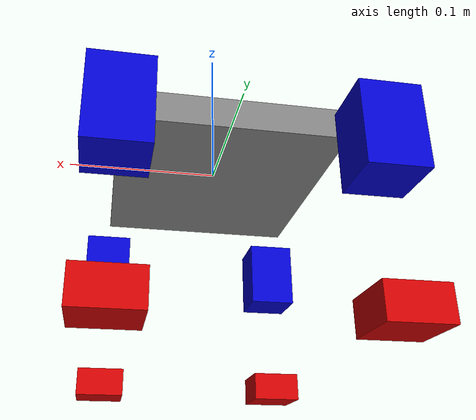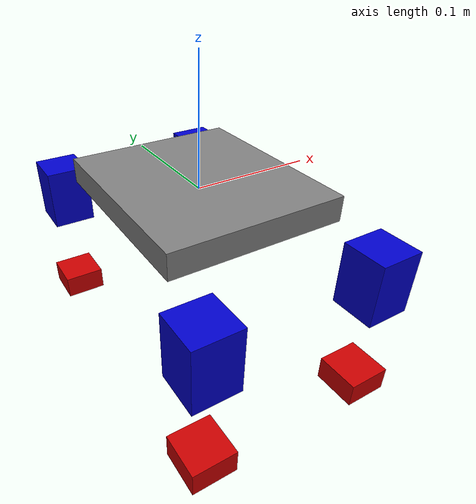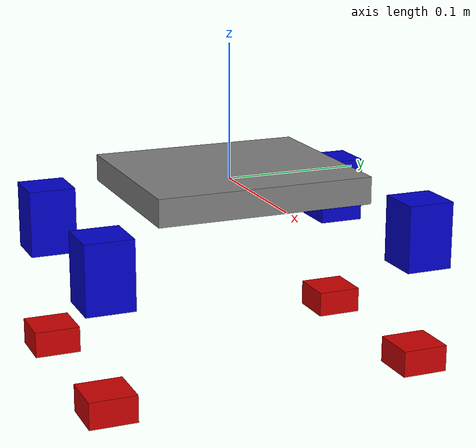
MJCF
<mujoco model="hsa_robot">
  <compiler angle="radian"/>

  <worldbody>
    <geom size="0.07 0.08 0.01" type="box"/>
    <body name="leg_fl" pos="0.035 0.06 -0.01">
      <inertial pos="0.035 0.06 -0.025" mass="0.02" diaginertia="6.20833e-06 6.20833e-06 4.08333e-06"/>
      <joint name="base_to_leg_fl" pos="0 0 0" axis="0 1 0" range="-0.25 0.25" actuatorfrcrange="-10 10"/>
      <geom size="0.0175 0.0175 0.025" pos="0.035 0.06 -0.025" type="box" rgba="0 0 0.8 1"/>
      <body name="foot_fl" pos="0 0 -0.06">
        <inertial pos="0.035 0.06 -0.06" quat="0.5 0.5 -0.5 0.5" mass="0.01" diaginertia="2.04167e-06 1.10417e-06 1.10417e-06"/>
        <joint name="leg_to_foot_fl" pos="0 0 0" axis="0 0 1" type="slide" range="-0.008 0.001" actuatorfrcrange="-10 10"/>
        <geom size="0.0175 0.0175 0.01" pos="0.035 0.06 -0.06" type="box" rgba="0.8 0 0 1"/>
      </body>
    </body>
    <body name="leg_fr" pos="0.035 -0.06 -0.01">
      <inertial pos="0.035 -0.06 -0.025" mass="0.02" diaginertia="6.20833e-06 6.20833e-06 4.08333e-06"/>
      <joint name="base_to_leg_fr" pos="0 0 0" axis="0 1 0" range="-0.25 0.25" actuatorfrcrange="-10 10"/>
      <geom size="0.0175 0.0175 0.025" pos="0.035 -0.06 -0.025" type="box" rgba="0 0 0.8 1"/>
      <body name="foot_fr" pos="0 0 -0.06">
        <inertial pos="0.035 -0.06 -0.06" quat="0.5 0.5 -0.5 0.5" mass="0.01" diaginertia="2.04167e-06 1.10417e-06 1.10417e-06"/>
        <joint name="leg_to_foot_fr" pos="0 0 0" axis="0 0 1" type="slide" range="-0.008 0.001" actuatorfrcrange="-10 10"/>
        <geom size="0.0175 0.0175 0.01" pos="0.035 -0.06 -0.06" type="box" rgba="0.8 0 0 1"/>
      </body>
    </body>
    <body name="leg_rl" pos="-0.035 0.06 -0.01">
      <inertial pos="-0.035 0.06 -0.025" mass="0.02" diaginertia="6.20833e-06 6.20833e-06 4.08333e-06"/>
      <joint name="base_to_leg_rl" pos="0 0 0" axis="0 1 0" range="-0.25 0.25" actuatorfrcrange="-10 10"/>
      <geom size="0.0175 0.0175 0.025" pos="-0.035 0.06 -0.025" type="box" rgba="0 0 0.8 1"/>
      <body name="foot_rl" pos="0 0 -0.06">
        <inertial pos="-0.035 0.06 -0.06" quat="0.5 0.5 -0.5 0.5" mass="0.01" diaginertia="2.04167e-06 1.10417e-06 1.10417e-06"/>
        <joint name="leg_to_foot_rl" pos="0 0 0" axis="0 0 1" type="slide" range="-0.008 0.001" actuatorfrcrange="-10 10"/>
        <geom size="0.0175 0.0175 0.01" pos="-0.035 0.06 -0.06" type="box" rgba="0.8 0 0 1"/>
      </body>
    </body>
    <body name="leg_rr" pos="-0.035 -0.06 -0.01">
      <inertial pos="-0.035 -0.06 -0.025" mass="0.02" diaginertia="6.20833e-06 6.20833e-06 4.08333e-06"/>
      <joint name="base_to_leg_rr" pos="0 0 0" axis="0 1 0" range="-0.25 0.25" actuatorfrcrange="-10 10"/>
      <geom size="0.0175 0.0175 0.025" pos="-0.035 -0.06 -0.025" type="box" rgba="0 0 0.8 1"/>
      <body name="foot_rr" pos="0 0 -0.06">
        <inertial pos="-0.035 -0.06 -0.06" quat="0.5 0.5 -0.5 0.5" mass="0.01" diaginertia="2.04167e-06 1.10417e-06 1.10417e-06"/>
        <joint name="leg_to_foot_rr" pos="0 0 0" axis="0 0 1" type="slide" range="-0.008 0.001" actuatorfrcrange="-10 10"/>
        <geom size="0.0175 0.0175 0.01" pos="-0.035 -0.06 -0.06" type="box" rgba="0.8 0 0 1"/>
      </body>
    </body>
  </worldbody>
</mujoco>
